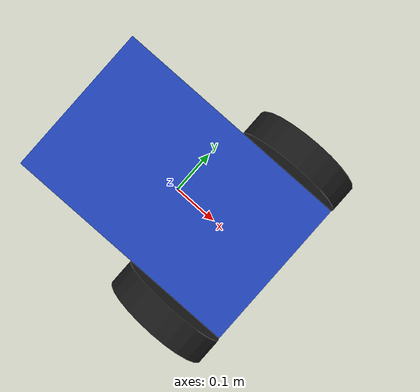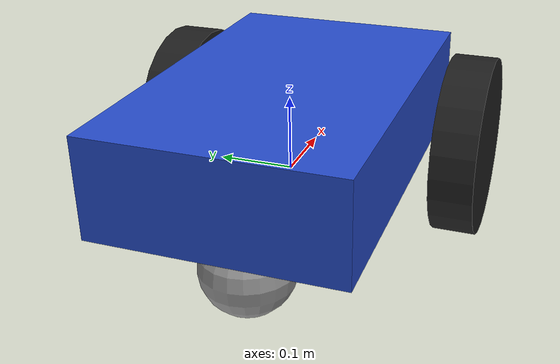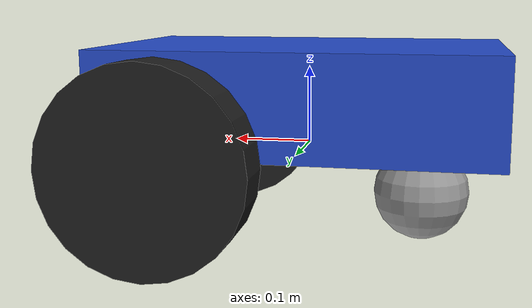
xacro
<?xml version="1.0"?>
<robot  xmlns:xacro="http://www.ros.org/wiki/xacro">
<!--no name overwrite, is reserved for the main file-->

    <xacro:property name="base_length" value="0.5"/>
    <xacro:property name="base_width" value="0.32"/>
    <xacro:property name="base_height" value="0.13"/>

    <xacro:property name="wheel_radius" value="0.125"/>
    <xacro:property name="wheel_width" value="0.06"/>

    <link name="base_footprint"/>

    <link name="base_link">
        <visual>
            <geometry>
                <box size="${base_length} ${base_width} ${base_height}" />
            </geometry>

            <origin xyz="0 0 ${base_height/2}" rpy="0 0 0"/>
            <material name="blue" />
        </visual>

        <collision>
            <geometry>
                <box size="${base_length} ${base_width} ${base_height}" />
            </geometry>
            <origin xyz="0 0 0.1" rpy="0 0 0"/>
        </collision>

        <xacro:box_inertia m="3.0" l="${2*base_length}" w="${2*base_width}" h="${2*base_height}"
                           xyz="0 0 0.1" rpy="0 0 0"/>

    </link>

    <link name="right_wheel_link">
        <visual>
            <geometry>
                <cylinder radius="${wheel_radius}" length="${wheel_width}"/>
            </geometry>

            <origin xyz="0 0 0" rpy="${pi/2.0} 0 0"/>
            <material name="black" />
        </visual>

        <collision>
            <geometry>
                <cylinder radius="${wheel_radius}" length="${wheel_width}"/>
            </geometry>
            <origin xyz="0 0 0" rpy="${pi/2.0} 0 0"/>
        </collision>

        <xacro:cylinder_inertia m="1" r="${2*wheel_radius}" h="${2*wheel_width}"
                                xyz="0 0 0" rpy="${pi/2.0} 0 0"/>

    </link>

    <link name="left_wheel_link">
        <visual>
            <geometry>
                <cylinder radius="${wheel_radius}" length="${wheel_width}"/>
            </geometry>

            <origin xyz="0 0 0" rpy="${pi/2.0} 0 0"/>
            <material name="black" />
        </visual>

        <collision>
            <geometry>
                <cylinder radius="${wheel_radius}" length="${wheel_width}"/>
            </geometry>
            <origin xyz="0 0 0" rpy="${pi/2.0} 0 0"/>
        </collision>

        <xacro:cylinder_inertia m="1" r="${2*wheel_radius}" h="${2*wheel_width}"
                                xyz="0 0 0" rpy="${pi/2.0} 0 0"/>
    </link>

    <link name="rear_caster">
        <visual>
            <geometry>
                <sphere radius="${wheel_radius/2}"/>
            </geometry>

            <origin xyz="0 0 0" rpy="0 0 0"/>
            <material name="grey" />
        </visual>

        <collision>
            <geometry>
                <sphere radius="${wheel_radius/2}"/>
            </geometry>
            <origin xyz="0 0 0" rpy="0 0 0"/>
        </collision>

        <xacro:sphere_inertia m="0.5" r="${2*wheel_radius/2}"  xyz="0 0 0" rpy="0 0 0"/>
    </link>

    <joint name="base_joint" type="fixed">
        <parent link="base_link" />
        <child link="base_footprint" />
        <origin xyz="0 0 -0.125" rpy="0 0 0" />
        <axis xyz="0 0 0" />
    </joint>

    <joint name="base_left_wheel_joint" type="continuous">
        <parent link="base_link" />
        <child link="left_wheel_link" />
        <origin xyz="0.15 +0.21 0" rpy="0 0 0" />
        <axis xyz="0 1 0" />
    </joint>

    <joint name="base_right_wheel_joint" type="continuous">
        <parent link="base_link" />
        <child link="right_wheel_link" />
        <origin xyz="0.15 -0.21 0" rpy="0 0 0" />
        <axis xyz="0 1 0" />
    </joint>

    <joint name="base_rear_caster_joint" type="fixed">
        <parent link="base_link" />
        <child link="rear_caster" />
        <origin xyz="-0.15 0 -${wheel_radius/2}" rpy="0 0 0" />
        <axis xyz="0 0 0" />
    </joint>

</robot>
